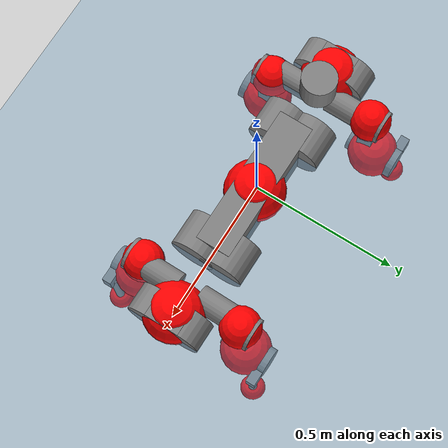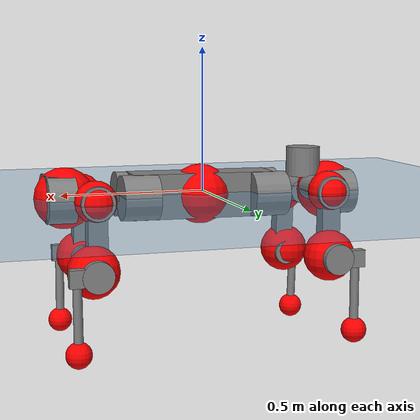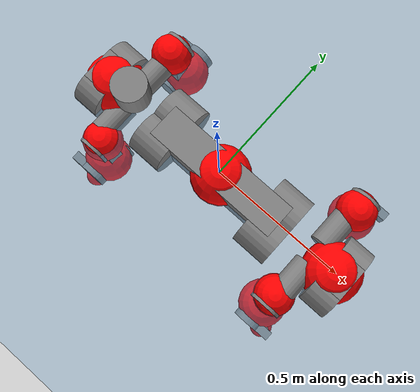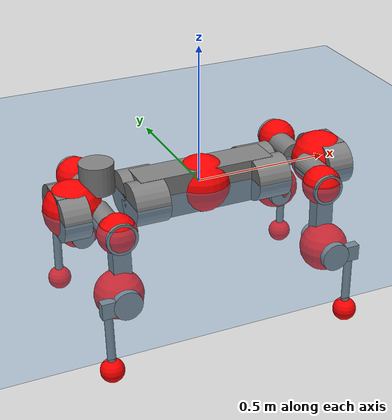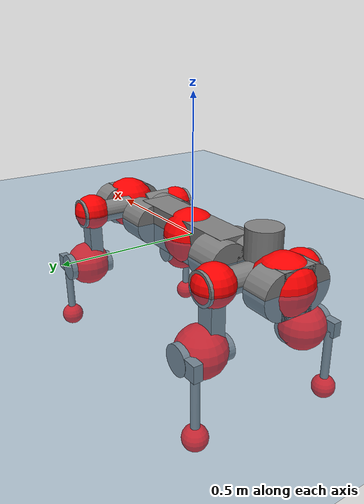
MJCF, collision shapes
<mujoco model="anymal_c">
  <compiler angle="radian" assetdir="assets" balanceinertia="true" inertiafromgeom="false"/>

  <option timestep="0.005" density="1.2" viscosity="2e-05"/>

  <size nkey="1"/>

  <visual>
    <quality shadowsize="8192"/>
    <map shadowclip="0.5"/>
  </visual>

  <default>
    <default class="/">
      <material specular="0" shininess="0.25"/>
      <geom contype="0" conaffinity="0" group="1" solref="-1000 -80"/>
      <site size="0.01 0.005 0.005" group="5"/>
      <general forcelimited="true" forcerange="-80 80" biastype="affine" gainprm="80" biasprm="0 -80 -2"/>
      <default class="anymal_c">
        <joint armature="0.01" damping="0.01" frictionloss="0.1"/>
        <default class="visual">
          <geom type="mesh" group="2"/>
          <default class="visual_zflip"/>
        </default>
        <default class="collision">
          <geom type="cylinder" group="3"/>
          <default class="foot">
            <geom size="0.03 0 0" type="sphere" condim="6" priority="1" friction="0.8 0.02 0.01" solimp="0.015 1 0.03"/>
          </default>
        </default>
      </default>
      <default class="reward_collision_sphere">
        <geom group="5" rgba="1 0 0 1"/>
      </default>
    </default>
  </default>

  <asset>
    <texture type="skybox" colorspace="auto" name="//unnamed_texture_0" builtin="gradient" rgb1="0.95 0.95 0.95" rgb2="0.95 0.95 0.95" width="100" height="600"/>
    <texture type="2d" colorspace="auto" name="texplane" builtin="checker" rgb1="0.345 0.575 0.748" rgb2="0.345 0.575 0.748" markrgb="1 1 1" width="512" height="512"/>
    <texture type="2d" colorspace="linear" name="base" file="base.png"/>
    <texture type="2d" colorspace="linear" name="top_shell" file="top_shell.png"/>
    <texture type="2d" colorspace="linear" name="bottom_shell" file="bottom_shell.png"/>
    <texture type="2d" colorspace="linear" name="remote" file="remote.png"/>
    <texture type="2d" colorspace="linear" name="hatch" file="hatch.png"/>
    <texture type="2d" colorspace="linear" name="handle" file="handle.png"/>
    <texture type="2d" colorspace="linear" name="face" file="face.png"/>
    <texture type="2d" colorspace="linear" name="battery" file="battery.png"/>
    <texture type="2d" colorspace="linear" name="lidar_cage" file="lidar_cage.png"/>
    <texture type="2d" colorspace="linear" name="depth_camera" file="depth_camera.png"/>
    <texture type="2d" colorspace="linear" name="wide_angle_camera" file="wide_angle_camera.png"/>
    <texture type="2d" colorspace="linear" name="lidar" file="lidar.png"/>
    <texture type="2d" colorspace="linear" name="drive" file="drive.png"/>
    <texture type="2d" colorspace="linear" name="hip_l" file="hip_l.png"/>
    <texture type="2d" colorspace="linear" name="shank_l" file="shank_l.png"/>
    <texture type="2d" colorspace="linear" name="foot" file="foot.png"/>
    <texture type="2d" colorspace="linear" name="thigh" file="thigh.png"/>
    <texture type="2d" colorspace="linear" name="shank_r" file="shank_r.png"/>
    <texture type="2d" colorspace="linear" name="hip_r" file="hip_r.png"/>
    <material name="MatPlane" class="/" texture="texplane" texuniform="true" texrepeat="2 2" specular="0.9" shininess="0.5"/>
    <material name="black_plastic" class="/" rgba="0.007 0.007 0.007 1"/>
    <material name="green" class="/" rgba="0.052 0.178 0.033 1"/>
    <material name="red" class="/" rgba="0.178 0.006 0.005 1"/>
    <material name="yellow" class="/" rgba="0.178 0.119 0.006 1"/>
    <material name="lwl" class="/" rgba="0.8 0.8 0.8 1"/>
    <material name="base" class="/" texture="base"/>
    <material name="top_shell" class="/" texture="top_shell"/>
    <material name="bottom_shell" class="/" texture="bottom_shell"/>
    <material name="hip_l" class="/" texture="hip_l"/>
    <material name="thigh" class="/" texture="thigh"/>
    <material name="shank_l" class="/" texture="shank_l"/>
    <material name="foot" class="/" texture="foot"/>
    <material name="hip_r" class="/" texture="hip_r"/>
    <material name="shank" class="/" texture="shank_r"/>
    <material name="hatch" class="/" texture="hatch"/>
    <material name="remote" class="/" texture="remote"/>
    <material name="handle" class="/" texture="handle"/>
    <material name="face" class="/" texture="face"/>
    <material name="depth_camera" class="/" texture="depth_camera"/>
    <material name="wide_angle_camera" class="/" texture="wide_angle_camera"/>
    <material name="battery" class="/" texture="battery"/>
    <material name="lidar_cage" class="/" texture="lidar_cage"/>
    <material name="lidar" class="/" texture="lidar"/>
    <material name="drive" class="/" texture="drive"/>
    <mesh name="base_0" class="/" file="base_0.obj"/>
    <mesh name="base_1" class="/" file="base_1.obj"/>
    <mesh name="base_2" class="/" file="base_2.obj"/>
    <mesh name="base_3" class="/" file="base_3.obj"/>
    <mesh name="base_4" class="/" file="base_4.obj"/>
    <mesh name="base_5" class="/" file="base_5.obj"/>
    <mesh name="top_shell" class="/" file="top_shell.obj"/>
    <mesh name="bottom_shell" class="/" file="bottom_shell.obj"/>
    <mesh name="remote" class="/" file="remote.obj"/>
    <mesh name="handle" class="/" file="handle.obj"/>
    <mesh name="face" class="/" file="face.obj"/>
    <mesh name="wide_angle_camera" class="/" file="wide_angle_camera.obj"/>
    <mesh name="depth_camera" class="/" file="depth_camera.obj"/>
    <mesh name="battery" class="/" file="battery.obj"/>
    <mesh name="lidar_cage" class="/" file="lidar_cage.obj"/>
    <mesh name="lidar" class="/" file="lidar.obj"/>
    <mesh name="drive" class="/" file="drive.obj"/>
    <mesh name="hip_l" class="/" file="hip_l.obj"/>
    <mesh name="thigh" class="/" file="thigh.obj"/>
    <mesh name="shank_l" class="/" file="shank_l.obj"/>
    <mesh name="foot" class="/" file="foot.obj"/>
    <mesh name="hip_r" class="/" file="hip_r.obj"/>
    <mesh name="hatch" class="/" file="hatch.obj"/>
    <mesh name="shank_r" class="/" file="shank_r.obj"/>
  </asset>

  <worldbody>
    <geom name="floor" class="/" size="100 100 0.125" type="plane" group="0" material="MatPlane"/>
    <light name="toplight_shadow" class="/" pos="0 0 5" dir="0.0990148 0.0990148 -0.990148" type="directional" ambient="0.04 0.04 0.04" diffuse="0.55 0.55 0.55" specular="0.12 0.12 0.12"/>
    <light name="toplight_fill" class="/" pos="0 0 5" dir="0.0990148 0.0990148 -0.990148" type="directional" castshadow="false" ambient="0.04 0.04 0.04" diffuse="0.3 0.3 0.3" specular="0.08 0.08 0.08"/>
    <body name="trunk" childclass="anymal_c" pos="0.00830014 -0.00205752 -0.0096155" quat="0.999985 -0.00379385 -0.0028814 -0.00263769">
      <inertial pos="0.0221542 0.0163692 0.0503869" quat="0.523389 0.487878 0.47466 0.512579" mass="9.07734" diaginertia="0.781873 0.144081 0.0572046"/>
      <joint name="//unnamed_joint_0" type="free" armature="0" damping="0" frictionloss="0"/>
      <geom name="//unnamed_geom_1" class="visual" material="green" mesh="base_0"/>
      <geom name="//unnamed_geom_2" class="visual" material="yellow" mesh="base_1"/>
      <geom name="//unnamed_geom_3" class="visual" material="red" mesh="base_2"/>
      <geom name="//unnamed_geom_4" class="visual" material="black_plastic" mesh="base_3"/>
      <geom name="//unnamed_geom_5" class="visual" material="lwl" mesh="base_4"/>
      <geom name="//unnamed_geom_6" class="visual" material="base" mesh="base_5"/>
      <geom name="trunk_1" class="collision" size="0.251411 0.0606854 0.0780241" type="box"/>
      <geom name="trunk_2" class="collision" size="0.0780241 0.0628528" pos="0.230781 0.0524463 0" quat="0.707107 0 0.707107 0"/>
      <geom name="trunk_3" class="collision" size="0.0780241 0.0628528" pos="-0.230781 0.0524463 0" quat="0.707107 0 0.707107 0"/>
      <geom name="trunk_4" class="collision" size="0.0780241 0.0628528" pos="0.230781 -0.0524463 0" quat="0.707107 0 0.707107 0"/>
      <geom name="trunk_5" class="collision" size="0.0780241 0.0628528" pos="-0.230781 -0.0524463 0" quat="0.707107 0 0.707107 0"/>
      <geom name="//unnamed_geom_12" class="visual" material="top_shell" mesh="top_shell"/>
      <geom name="//unnamed_geom_13" class="visual" material="bottom_shell" mesh="bottom_shell"/>
      <geom name="//unnamed_geom_14" class="visual" material="remote" mesh="remote"/>
      <geom name="//unnamed_geom_15" class="visual" material="handle" mesh="handle"/>
      <geom name="//unnamed_geom_16" class="visual" pos="0.439811 0 0" quat="1 0 0 0" material="face" mesh="face"/>
      <geom name="trunk_6" class="collision" size="0.0476814 0.0606854 0.0780241" pos="0.498169 0 0" type="box"/>
      <geom name="//unnamed_geom_18" class="collision" size="0.0780241 0.0476814" pos="0.498169 0.0524463 0" quat="0.707107 0 0.707107 0"/>
      <geom name="//unnamed_geom_19" class="collision" size="0.0780241 0.0476814" pos="0.498169 -0.0524463 0" quat="0.707107 0 0.707107 0"/>
      <geom name="//unnamed_geom_20" class="visual" pos="0.489828 0 -0.0210266" quat="0.965926 0 0.258819 0" material="depth_camera" mesh="depth_camera"/>
      <geom name="//unnamed_geom_21" class="visual" pos="0.544325 0 0.0118339" material="wide_angle_camera" mesh="wide_angle_camera"/>
      <geom name="//unnamed_geom_22" class="visual_zflip" pos="-0.439811 0 0" quat="0 0 0 1" material="face" mesh="face"/>
      <geom name="trunk_7" class="collision" size="0.0476814 0.0606854 0.0780241" pos="-0.498169 0 0" quat="0 0 0 1" type="box"/>
      <geom name="//unnamed_geom_24" class="collision" size="0.0780241 0.0476814" pos="-0.498169 -0.0524463 0" quat="0 -0.707107 0 0.707107"/>
      <geom name="//unnamed_geom_25" class="collision" size="0.0780241 0.0476814" pos="-0.498169 0.0524463 0" quat="0 -0.707107 0 0.707107"/>
      <geom name="//unnamed_geom_26" class="visual" pos="-0.489828 0 -0.0210266" quat="0 -0.258819 0 0.965926" material="depth_camera" mesh="depth_camera"/>
      <geom name="//unnamed_geom_27" class="visual_zflip" pos="-0.544325 0 0.0118339" quat="0 0 0 1" material="wide_angle_camera" mesh="wide_angle_camera"/>
      <geom name="//unnamed_geom_28" class="visual" material="battery" mesh="battery"/>
      <geom name="//unnamed_geom_29" class="visual" pos="0 0.0531833 0.0250205" quat="0.683013 -0.183013 0.183013 0.683013" material="depth_camera" mesh="depth_camera"/>
      <geom name="//unnamed_geom_30" class="visual" pos="0 -0.0531833 0.0250205" quat="0.683013 0.183013 0.183013 -0.683013" material="depth_camera" mesh="depth_camera"/>
      <geom name="//unnamed_geom_31" class="visual" pos="-0.386227 0 0.0581023" quat="1 0 0 0" material="lidar_cage" mesh="lidar_cage"/>
      <geom name="trunk_8" class="collision" size="0.0606854 0.0520161" pos="-0.386227 0 0.105533"/>
      <geom name="//unnamed_geom_33" class="visual" pos="-0.386227 -0.000122509 0.11241" quat="0.707107 0 0 -0.707107" material="lidar" mesh="lidar"/>
      <geom name="//unnamed_geom_34" class="visual" pos="0.318213 0.0779349 -7.11984e-10" quat="0.258819 0.965926 0 0" material="drive" mesh="drive"/>
      <geom name="//unnamed_geom_35" class="visual" pos="0.318213 -0.0779349 7.11984e-10" quat="0.258819 -0.965926 0 0" material="drive" mesh="drive"/>
      <geom name="//unnamed_geom_36" class="visual" pos="-0.318213 0.0779349 7.11984e-10" quat="0 0 0.965926 -0.258819" material="drive" mesh="drive"/>
      <geom name="//unnamed_geom_37" class="visual" pos="-0.318213 -0.0779349 -7.11984e-10" quat="0 0 -0.965926 -0.258819" material="drive" mesh="drive"/>
      <geom name="//unnamed_geom_38" class="visual" pos="0.123083 0 0.0577071" quat="1 0 0 0" material="hatch" mesh="hatch"/>
      <geom name="//unnamed_geom_39" class="reward_collision_sphere" size="0.104032"/>
      <geom name="//unnamed_geom_40" class="reward_collision_sphere" size="0.104032" pos="0.477478 0 0"/>
      <geom name="//unnamed_geom_41" class="reward_collision_sphere" size="0.104032" pos="-0.477478 0 0"/>
      <site name="imu" pos="0.176273 0.0116036 0.124024" size="0.00866935"/>
      <camera name="track" pos="0 -1.49847 0" quat="0.707107 0.707107 0 0" mode="trackcom"/>
      <camera name="ego_camera" pos="0.477478 0 -0.0316203" quat="-0.5 -0.5 0.5 0.5"/>
      <body name="LF_HIP" pos="0.333097 0.0933312 0.0113613" quat="0.25834 0.966049 -0.00304336 -0.00035952">
        <inertial pos="0.0614677 0.00329585 -0.00132421" quat="-0.132438 0.7099 -0.128862 0.67963" mass="1.92397" diaginertia="0.0093963 0.00172375 0.00123447"/>
        <joint name="LF_HAA" pos="0 0 0" axis="0.999789 0.0205069 -0.000774024" stiffness="0.0675038" range="-0.692518 0.278892" armature="0.0067932" damping="0" frictionloss="0.145481"/>
        <geom name="//unnamed_geom_42" class="visual" pos="0 -4.18828e-05 6.87922e-06" quat="0.258819 -0.965926 0 0" material="hip_l" mesh="hip_l"/>
        <geom name="//unnamed_geom_43" class="visual" pos="0.0635577 -0.0729226 -0.0424072" quat="0.183013 -0.683013 0.683013 0.183013" material="drive" mesh="drive"/>
        <geom name="//unnamed_geom_44" class="collision" size="0.0433467 0.0606854" pos="0.0635577 -0.00896068 -0.00545845" quat="-0.353553 -0.612372 0.612372 -0.353553"/>
        <body name="LF_THIGH" pos="0.0758323 -0.0727111 -0.0443653" quat="0.18659 -0.679757 0.686815 0.1772">
          <inertial pos="0.0285991 0.00108763 -0.206281" quat="0.985056 -0.0140755 -0.15416 0.075511" mass="2.50705" diaginertia="0.0442367 0.0092969 0.00122323"/>
          <joint name="LF_HFE" pos="0 0 0" axis="0.999207 -0.0354738 0.0180741" stiffness="0.0209664" range="-3.46995 2.87101" armature="0.0120101" damping="0" frictionloss="0.140137"/>
          <geom name="//unnamed_geom_45" class="visual" pos="0.00620418 9.77634e-06 0" quat="0.707107 0 0 -0.707107" material="thigh" mesh="thigh"/>
          <geom name="//unnamed_geom_46" class="collision" size="0.0563508 0.0346774" pos="0.0424425 0 0" quat="0.5 0.5 -0.5 -0.5"/>
          <geom name="//unnamed_geom_47" class="collision" size="0.03251 0.026008 0.12251" pos="0.0318319 0 -0.11171" quat="0.707107 0 0 -0.707107" type="box"/>
          <geom name="//unnamed_geom_48" class="visual" pos="0.106425 0 -0.225295" quat="1 0 0 0" material="drive" mesh="drive"/>
          <geom name="//unnamed_geom_49" class="collision" size="0.0433467 0.0606854" pos="0.0321502 0 -0.225295" quat="0.707107 0 0.707107 0"/>
          <geom name="//unnamed_geom_50" class="reward_collision_sphere" size="0.0693548" pos="0.0265266 0 0"/>
          <body name="LF_SHANK" pos="0.108606 -0.0168575 -0.221685" quat="0.999992 0.00213562 -0.00166427 -0.00286588">
            <inertial pos="0.00870833 -0.0533477 -0.0525062" quat="0.992261 -0.118819 0.0143501 -0.033071" mass="0.402744" diaginertia="0.0177946 0.00220745 0.000340328"/>
            <joint name="LF_KFE" pos="0 0 0" axis="0.999619 0.0252755 -0.0110651" stiffness="0.0806739" range="-3.4077 3.07512" armature="0.00502426" damping="0" frictionloss="0.0724363"/>
            <geom name="//unnamed_geom_51" class="visual" pos="0.00202305 0.010787 0" quat="0.707107 0 0 -0.707107" material="shank_l" mesh="shank_l"/>
            <geom name="LF_kfe_act" class="collision" size="0.0520161 0.0173387" pos="0.0212213 0 0" quat="0.5 0.5 -0.5 -0.5"/>
            <geom name="//unnamed_geom_53" class="collision" size="0.0498479 0.029259 0.0164718" pos="0.0212213 -0.0430802 0" quat="0.5 0.5 -0.5 -0.5" type="box"/>
            <geom name="//unnamed_geom_54" class="visual" pos="0.0138464 -0.0624189 -0.267168" quat="0.382683 0 0 -0.92388" material="foot" mesh="foot"/>
            <geom name="LF_calf" class="collision" size="0.0151714 0.122456" pos="0.0138469 -0.0658951 -0.133584" quat="0.707107 0 0 -0.707107"/>
            <geom name="LF_foot" class="foot" size="0.023317" pos="0.0138469 -0.0658951 -0.249381" quat="0.707107 0 0 -0.707107"/>
            <geom name="//unnamed_geom_57" class="reward_collision_sphere" size="0.0866935" pos="-0.0530531 0 0"/>
            <geom name="//unnamed_geom_58" class="reward_collision_sphere" size="0.0433467" pos="0.0138469 -0.0658951 -0.249381"/>
            <site name="LF_foot" class="foot" pos="0.0138469 -0.0658951 -0.249381" quat="0.707107 0 0 -0.707107" size="0.00866935"/>
          </body>
        </body>
      </body>
      <body name="RF_HIP" pos="0.336103 -0.0837686 0.00761504" quat="0.258652 -0.96597 8.13189e-05 -0.00072628">
        <inertial pos="0.0733303 0.0312106 0.00683942" quat="0.219982 0.644196 0.115742 0.723342" mass="1.76362" diaginertia="0.00858508 0.000832012 0.00109984"/>
        <joint name="RF_HAA" pos="0 0 0" axis="0.997069 0.0749642 -0.0153187" range="-0.62543 0.757716" armature="0.00650653" damping="0.0737685" frictionloss="0.0437654"/>
        <geom name="//unnamed_geom_59" class="visual" pos="0 4.18825e-05 6.8792e-06" quat="0.258819 0.965926 0 0" material="hip_r" mesh="hip_r"/>
        <geom name="//unnamed_geom_60" class="visual" pos="0.0635577 0.0729226 -0.0424072" quat="0.183013 0.683013 0.683013 -0.183013" material="drive" mesh="drive"/>
        <geom name="//unnamed_geom_61" class="collision" size="0.0433467 0.0606854" pos="0.0635577 0.00896068 -0.00545845" quat="-0.353553 0.612372 0.612372 0.353553"/>
        <body name="RF_THIGH" pos="0.0516335 0.0662394 -0.0172685" quat="0.175799 0.684116 0.684523 -0.180298">
          <inertial pos="0.0150669 0.00900787 -0.181897" quat="0.989198 0.0440455 -0.117649 0.0755431" mass="1.76907" diaginertia="0.0516139 0.00921072 0.00109802"/>
          <joint name="RF_HFE" pos="0 0 0" axis="0.999863 0.0163727 0.00223147" range="-3.33213 3.2862" armature="0.0137687" damping="0.0105353" frictionloss="0.0410185"/>
          <geom name="//unnamed_geom_62" class="visual" pos="0.00620418 9.77634e-06 0" quat="0.707107 0 0 -0.707107" material="thigh" mesh="thigh"/>
          <geom name="//unnamed_geom_63" class="collision" size="0.0563508 0.0346774" pos="0.0424425 0 0" quat="0.5 0.5 0.5 0.5"/>
          <geom name="//unnamed_geom_64" class="collision" size="0.03251 0.026008 0.12251" pos="0.0318319 0 -0.11171" quat="0.707107 0 0 0.707107" type="box"/>
          <geom name="//unnamed_geom_65" class="visual" pos="0.106425 0 -0.225295" quat="1 0 0 0" material="drive" mesh="drive"/>
          <geom name="//unnamed_geom_66" class="collision" size="0.0433467 0.0606854" pos="0.0321502 0 -0.225295" quat="0.707107 0 0.707107 0"/>
          <geom name="//unnamed_geom_67" class="reward_collision_sphere" size="0.0693548" pos="0.0265266 0 0"/>
          <body name="RF_SHANK" pos="0.119034 -0.00237022 -0.231365" quat="0.999981 -0.00445853 0.00112269 0.00412926">
            <inertial pos="0.0206852 0.0455595 -0.0647257" quat="0.985533 0.155477 0.0596199 -0.0315727" mass="0.262326" diaginertia="0.00964406 0.00201346 0.000271526"/>
            <joint name="RF_KFE" pos="0 0 0" axis="1 -0.00070739 0.000196477" stiffness="0.0870145" range="-2.78309 3.39425" armature="0.00127607" damping="0" frictionloss="0.0392645"/>
            <geom name="//unnamed_geom_68" class="visual" pos="0.00202304 -0.010787 0" quat="0.707107 0 0 0.707107" material="shank" mesh="shank_r"/>
            <geom name="RF_kfe_act" class="collision" size="0.0520161 0.0173387" pos="0.0212213 0 0" quat="0.5 0.5 0.5 0.5"/>
            <geom name="//unnamed_geom_70" class="collision" size="0.0498479 0.029259 0.0164718" pos="0.0212213 0.0430802 0" quat="0.5 0.5 0.5 0.5" type="box"/>
            <geom name="//unnamed_geom_71" class="visual" pos="0.0138474 0.0624189 -0.267168" quat="0.382683 0 0 0.92388" material="foot" mesh="foot"/>
            <geom name="RF_calf" class="collision" size="0.0151714 0.122456" pos="0.0138469 0.0658951 -0.133584" quat="0.707107 0 0 0.707107"/>
            <geom name="RF_foot" class="foot" size="0.0404874" pos="0.0138469 0.0658951 -0.249381" quat="0.707107 0 0 0.707107"/>
            <geom name="//unnamed_geom_74" class="reward_collision_sphere" size="0.0866935" pos="-0.0530531 0 0"/>
            <geom name="//unnamed_geom_75" class="reward_collision_sphere" size="0.0433467" pos="0.0138469 0.0658951 -0.249381"/>
            <site name="RF_foot" class="foot" pos="0.0138469 0.0658951 -0.249381" quat="0.707107 0 0 0.707107" size="0.00866935"/>
          </body>
        </body>
      </body>
      <body name="LH_HIP" pos="-0.334863 0.0918395 0.0161528" quat="-0.00143359 0.000227546 0.965536 -0.260264">
        <inertial pos="0.061462 -0.00234389 0.0117187" quat="0.124698 0.714158 0.177939 0.665407" mass="1.40395" diaginertia="0.00460185 0.00098813 0.000906256"/>
        <joint name="LH_HAA" pos="0 0 0" axis="0.997075 0.0375245 0.0665898" stiffness="0.0528135" range="-0.428787 0.526918" armature="0.0103213" damping="0.0928218" frictionloss="0.0863219"/>
        <geom name="//unnamed_geom_76" class="visual" pos="0 4.18825e-05 6.8792e-06" quat="-0.258819 -0.965926 0 0" material="hip_r" mesh="hip_r"/>
        <geom name="//unnamed_geom_77" class="visual" pos="0.0635577 0.0729226 -0.0424072" quat="0.183013 0.683013 0.683013 -0.183013" material="drive" mesh="drive"/>
        <geom name="//unnamed_geom_78" class="collision" size="0.0433467 0.0606854" pos="0.0635577 0.00896068 -0.00545845" quat="-0.353553 0.612372 0.612372 0.353553"/>
        <body name="LH_THIGH" pos="0.0658969 0.0649456 -0.0440106" quat="0.184227 0.684628 0.680115 -0.186515">
          <inertial pos="0.0521765 -0.00944584 -0.175931" quat="0.992396 -0.0121135 -0.0719654 0.0991189" mass="2.65637" diaginertia="0.0591322 0.00684481 0.00132966"/>
          <joint name="LH_HFE" pos="0 0 0" axis="0.999946 0.0080723 0.00651463" range="-2.90721 3.40895" armature="0.00556956" damping="0.0807072" frictionloss="0.094253"/>
          <geom name="//unnamed_geom_79" class="visual" pos="0.00620418 9.77634e-06 0" quat="0.707107 0 0 -0.707107" material="thigh" mesh="thigh"/>
          <geom name="//unnamed_geom_80" class="collision" size="0.0563508 0.0346774" pos="0.0424425 0 0" quat="0.5 0.5 -0.5 -0.5"/>
          <geom name="//unnamed_geom_81" class="collision" size="0.03251 0.026008 0.12251" pos="0.0318319 0 -0.11171" quat="0.707107 0 0 -0.707107" type="box"/>
          <geom name="//unnamed_geom_82" class="visual" pos="0.106425 0 -0.225295" quat="1 0 0 0" material="drive" mesh="drive"/>
          <geom name="//unnamed_geom_83" class="collision" size="0.0433467 0.0606854" pos="0.0321502 0 -0.225295" quat="0.707107 0 0.707107 0"/>
          <geom name="//unnamed_geom_84" class="reward_collision_sphere" size="0.0693548" pos="0.0265266 0 0"/>
          <body name="LH_SHANK" pos="0.116663 -0.0100094 -0.216132" quat="1 0.000302195 -5.65135e-05 0.000328576">
            <inertial pos="-0.00587575 0.0292824 -0.054473" quat="0.983699 0.178765 -0.012036 0.0152863" mass="0.295016" diaginertia="0.0120733 0.0013097 0.000231251"/>
            <joint name="LH_KFE" pos="0 0 0" axis="0.999686 0.0128214 -0.0215111" range="-3.46469 3.41714" armature="0.00090034" damping="0" frictionloss="0.154799"/>
            <geom name="//unnamed_geom_85" class="visual" pos="0.00202304 -0.010787 0" quat="-0.707107 0 0 -0.707107" material="shank" mesh="shank_r"/>
            <geom name="LH_kfe_act" class="collision" size="0.0520161 0.0173387" pos="0.0212213 0 0" quat="0.5 0.5 -0.5 -0.5"/>
            <geom name="//unnamed_geom_87" class="collision" size="0.0498479 0.029259 0.0164718" pos="0.0212213 0.0430802 0" quat="0.5 0.5 -0.5 -0.5" type="box"/>
            <geom name="//unnamed_geom_88" class="visual" pos="0.0138474 0.0624189 -0.267168" quat="-0.382683 0 0 -0.92388" material="foot" mesh="foot"/>
            <geom name="LH_calf" class="collision" size="0.0151714 0.122456" pos="0.0138469 0.0658951 -0.133584" quat="0.707107 0 0 -0.707107"/>
            <geom name="LH_foot" class="foot" size="0.0160919" pos="0.0138469 0.0658951 -0.249381" quat="0.707107 0 0 -0.707107"/>
            <geom name="//unnamed_geom_91" class="reward_collision_sphere" size="0.0866935" pos="-0.0530531 0 0"/>
            <geom name="//unnamed_geom_92" class="reward_collision_sphere" size="0.0433467" pos="0.0138469 0.0658951 -0.249381"/>
            <site name="LH_foot" class="foot" pos="0.0138469 0.0658951 -0.249381" quat="0.707107 0 0 -0.707107" size="0.00866935"/>
          </body>
        </body>
      </body>
      <body name="RH_HIP" pos="-0.337734 -0.0825324 -0.0104724" quat="-0.000991838 0.00164207 -0.966301 -0.257407">
        <inertial pos="0.0727767 -0.0234696 0.0115908" quat="-0.17166 0.691429 -0.221338 0.665934" mass="1.80434" diaginertia="0.00952808 0.0013805 0.00128594"/>
        <joint name="RH_HAA" pos="0 0 0" axis="0.996261 -0.0322513 0.0801546" range="-0.383836 0.251938" armature="0.0135528" damping="0.0689503" frictionloss="0.0863139"/>
        <geom name="//unnamed_geom_93" class="visual" pos="0 -4.18828e-05 6.87922e-06" quat="-0.258819 0.965926 0 0" material="hip_l" mesh="hip_l"/>
        <geom name="//unnamed_geom_94" class="visual" pos="0.0635577 -0.0729226 -0.0424072" quat="-0.183013 0.683013 -0.683013 -0.183013" material="drive" mesh="drive"/>
        <geom name="//unnamed_geom_95" class="collision" size="0.0433467 0.0606854" pos="0.0635577 -0.00896068 -0.00545845" quat="0.353553 0.612372 -0.612372 0.353553"/>
        <body name="RH_THIGH" pos="0.0451745 -0.0640011 -0.0163841" quat="-0.188533 0.679115 -0.686126 -0.180247">
          <inertial pos="0.0286856 -0.0125304 -0.202202" quat="0.992622 0.00104512 -0.0883467 0.0830365" mass="2.75439" diaginertia="0.0560629 0.00875081 0.00161872"/>
          <joint name="RH_HFE" pos="0 0 0" axis="0.999394 0.0212631 0.02757" stiffness="0.0276359" range="-3.39322 3.32109" armature="0.0117374" damping="0" frictionloss="0.0975534"/>
          <geom name="//unnamed_geom_96" class="visual" pos="0.00620418 9.77634e-06 0" quat="0.707107 0 0 -0.707107" material="thigh" mesh="thigh"/>
          <geom name="//unnamed_geom_97" class="collision" size="0.0563508 0.0346774" pos="0.0424425 0 0" quat="0.5 0.5 0.5 0.5"/>
          <geom name="//unnamed_geom_98" class="collision" size="0.03251 0.026008 0.12251" pos="0.0318319 0 -0.11171" quat="0.707107 0 0 0.707107" type="box"/>
          <geom name="//unnamed_geom_99" class="visual" pos="0.106425 0 -0.225295" quat="1 0 0 0" material="drive" mesh="drive"/>
          <geom name="//unnamed_geom_100" class="collision" size="0.0433467 0.0606854" pos="0.0321502 0 -0.225295" quat="0.707107 0 0.707107 0"/>
          <geom name="//unnamed_geom_101" class="reward_collision_sphere" size="0.0693548" pos="0.0265266 0 0"/>
          <body name="RH_SHANK" pos="0.0985262 -0.0153429 -0.218622" quat="0.999961 -0.00224163 -0.00829085 -0.00181132">
            <inertial pos="-0.00969203 -0.0350198 -0.0723497" quat="0.997903 -0.0591953 0.0191545 0.0178656" mass="0.359142" diaginertia="0.0163392 0.00213184 0.000384849"/>
            <joint name="RH_KFE" pos="0 0 0" axis="0.999593 0.0258904 0.0119986" range="-3.15567 2.79917" armature="0.00856093" damping="0" frictionloss="0.0396182"/>
            <geom name="//unnamed_geom_102" class="visual" pos="0.00202305 0.010787 0" quat="0.707107 0 0 -0.707107" material="shank_l" mesh="shank_l"/>
            <geom name="RH_kfe_act" class="collision" size="0.0520161 0.0173387" pos="0.0212213 0 0" quat="0.5 0.5 0.5 0.5"/>
            <geom name="//unnamed_geom_104" class="collision" size="0.0498479 0.029259 0.0164718" pos="0.0212213 -0.0430802 0" quat="0.5 0.5 0.5 0.5" type="box"/>
            <geom name="//unnamed_geom_105" class="visual" pos="0.0138464 -0.0624189 -0.267168" quat="0.382683 0 0 -0.92388" material="foot" mesh="foot"/>
            <geom name="RH_calf" class="collision" size="0.0151714 0.122456" pos="0.0138469 -0.0658951 -0.133584" quat="0.707107 0 0 0.707107"/>
            <geom name="RH_foot" class="foot" size="0.0393798" pos="0.0138469 -0.0658951 -0.249381" quat="0.707107 0 0 0.707107"/>
            <geom name="//unnamed_geom_108" class="reward_collision_sphere" size="0.0866935" pos="-0.0530531 0 0"/>
            <geom name="//unnamed_geom_109" class="reward_collision_sphere" size="0.0433467" pos="0.0138469 -0.0658951 -0.249381"/>
            <site name="RH_foot" class="foot" pos="0.0138469 -0.0658951 -0.249381" quat="0.707107 0 0 0.707107" size="0.00866935"/>
          </body>
        </body>
      </body>
    </body>
  </worldbody>

  <contact>
    <pair class="/" geom1="floor" geom2="LF_foot" name="//unnamed_contact_0"/>
    <pair class="/" geom1="floor" geom2="RF_foot" name="//unnamed_contact_1"/>
    <pair class="/" geom1="floor" geom2="LH_foot" name="//unnamed_contact_2"/>
    <pair class="/" geom1="floor" geom2="RH_foot" name="//unnamed_contact_3"/>
  </contact>

  <actuator>
    <general name="LF_HAA" class="/" joint="LF_HAA" forcerange="-108.398 108.398" gainprm="90.8099" biasprm="0 -90.8099 -2.26529"/>
    <general name="LF_HFE" class="/" joint="LF_HFE" forcerange="-116.443 116.443" gainprm="90.8099" biasprm="0 -90.8099 -2.26529"/>
    <general name="LF_KFE" class="/" joint="LF_KFE" forcerange="-93.9661 93.9661" gainprm="90.8099" biasprm="0 -90.8099 -2.26529"/>
    <general name="RF_HAA" class="/" joint="RF_HAA" forcerange="-59.8014 59.8014" gainprm="90.8099" biasprm="0 -90.8099 -2.26529"/>
    <general name="RF_HFE" class="/" joint="RF_HFE" forcerange="-32.8224 32.8224" gainprm="90.8099" biasprm="0 -90.8099 -2.26529"/>
    <general name="RF_KFE" class="/" joint="RF_KFE" forcerange="-88.405 88.405" gainprm="90.8099" biasprm="0 -90.8099 -2.26529"/>
    <general name="LH_HAA" class="/" joint="LH_HAA" forcerange="-76.9597 76.9597" gainprm="90.8099" biasprm="0 -90.8099 -2.26529"/>
    <general name="LH_HFE" class="/" joint="LH_HFE" forcerange="-106.928 106.928" gainprm="90.8099" biasprm="0 -90.8099 -2.26529"/>
    <general name="LH_KFE" class="/" joint="LH_KFE" forcerange="-43.9842 43.9842" gainprm="90.8099" biasprm="0 -90.8099 -2.26529"/>
    <general name="RH_HAA" class="/" joint="RH_HAA" forcerange="-85.6771 85.6771" gainprm="90.8099" biasprm="0 -90.8099 -2.26529"/>
    <general name="RH_HFE" class="/" joint="RH_HFE" forcerange="-27.0644 27.0644" gainprm="90.8099" biasprm="0 -90.8099 -2.26529"/>
    <general name="RH_KFE" class="/" joint="RH_KFE" forcerange="-49.5418 49.5418" gainprm="90.8099" biasprm="0 -90.8099 -2.26529"/>
  </actuator>

  <sensor>
    <gyro site="imu" name="imu_angular_velocity"/>
    <velocimeter site="imu" name="imu_linear_velocity"/>
    <framelinvel objtype="site" objname="LF_foot" name="LF_foot_global_linear_velocity"/>
    <framelinvel objtype="site" objname="RF_foot" name="RF_foot_global_linear_velocity"/>
    <framelinvel objtype="site" objname="LH_foot" name="LH_foot_global_linear_velocity"/>
    <framelinvel objtype="site" objname="RH_foot" name="RH_foot_global_linear_velocity"/>
  </sensor>

  <keyframe>
    <key name="home" qpos="0 0 0.55 1 0 0 0 0 0.4 -0.8 0 -0.4 0.8 0 -0.4 0.8 0 0.4 -0.8"/>
  </keyframe>
</mujoco>
